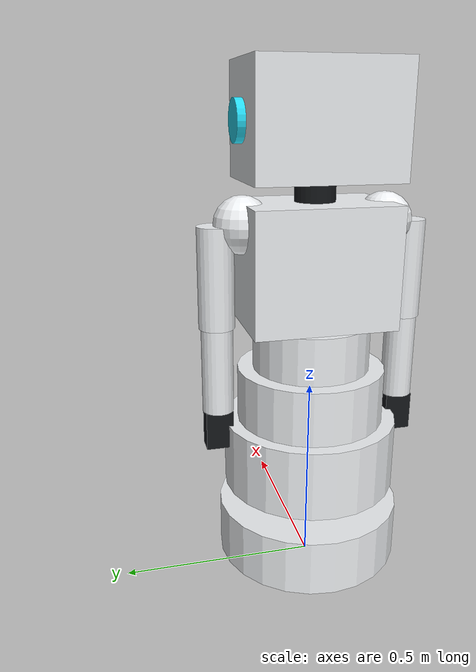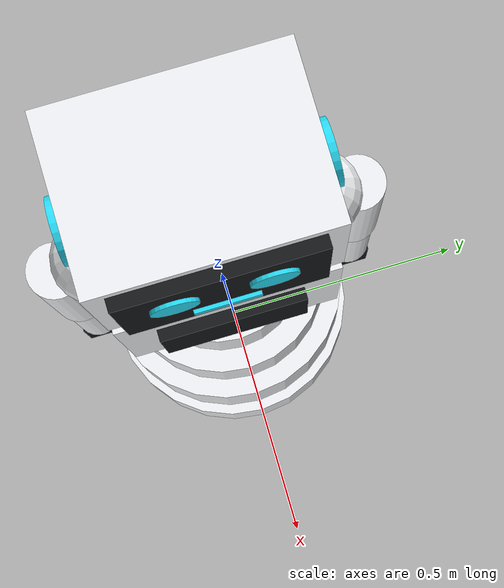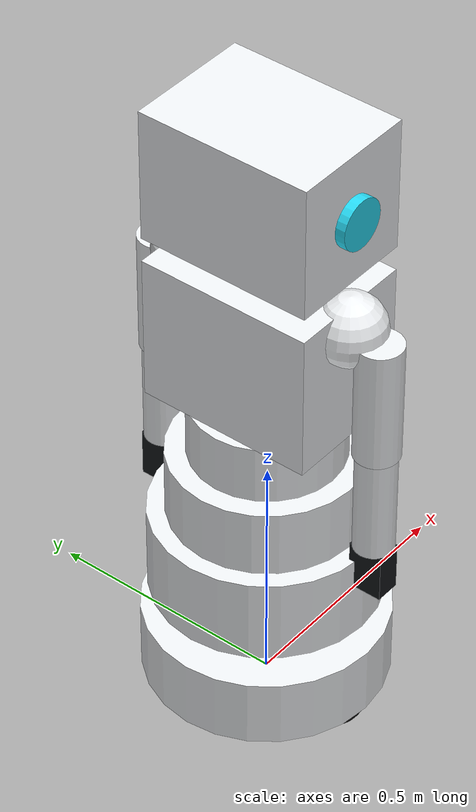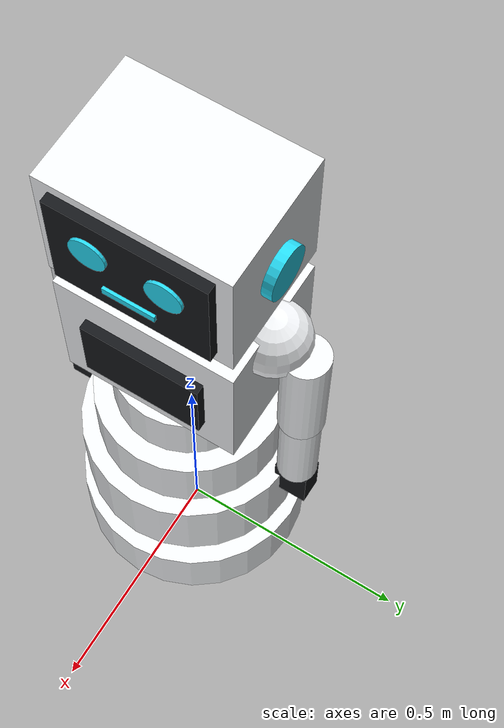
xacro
<?xml version="1.0"?>
<robot name="service_robot" xmlns:xacro="http://www.ros.org/wiki/xacro">

  <xacro:arg name="namespace" default=""/>
  <xacro:property name="ns" value="$(arg namespace)"/>

  <xacro:include filename="$(find robot_description)/urdf/inertial_macros.xacro"/>

  <!-- ===================== Shared dimensions ===================== -->
  <!-- Wheels / base -->
  <xacro:property name="wheel_radius" value="0.075"/>
  <xacro:property name="wheel_width" value="0.04"/>
  <xacro:property name="wheel_separation" value="0.40"/>
  <xacro:property name="wheel_mass" value="1.5"/>

  <xacro:property name="caster_radius" value="0.03"/>
  <xacro:property name="caster_x" value="0.17"/>
  <xacro:property name="caster_mass" value="0.3"/>

  <xacro:property name="base_ring_radius" value="0.24"/>
  <xacro:property name="base_ring_height" value="0.145"/>
  <xacro:property name="base_ring_mass" value="30.0"/>

  <xacro:property name="slot_radius" value="0.08"/>
  <xacro:property name="slot_height" value="0.06"/>

  <!-- Lower body (skirt) -->
  <xacro:property name="skirt_height" value="0.44"/>
  <xacro:property name="skirt_r_bottom" value="0.225"/>
  <xacro:property name="skirt_r_mid" value="0.19"/>
  <xacro:property name="skirt_r_top" value="0.15"/>
  <xacro:property name="skirt_mass" value="6.0"/>

  <!-- Torso -->
  <xacro:property name="torso_x" value="0.26"/>
  <xacro:property name="torso_y" value="0.36"/>
  <xacro:property name="torso_z" value="0.30"/>
  <xacro:property name="torso_mass" value="6.0"/>
  <xacro:property name="shoulder_radius" value="0.07"/>

  <!-- Neck / head -->
  <xacro:property name="neck_radius" value="0.05"/>
  <xacro:property name="neck_height" value="0.05"/>
  <xacro:property name="neck_mass" value="0.5"/>

  <xacro:property name="head_x" value="0.26"/>
  <xacro:property name="head_y" value="0.36"/>
  <xacro:property name="head_z" value="0.27"/>
  <xacro:property name="head_mass" value="3.5"/>

  <!-- Arms -->
  <xacro:property name="upper_arm_radius" value="0.045"/>
  <xacro:property name="upper_arm_length" value="0.25"/>
  <xacro:property name="upper_arm_mass" value="1.2"/>
  <xacro:property name="forearm_radius" value="0.04"/>
  <xacro:property name="forearm_length" value="0.22"/>
  <xacro:property name="forearm_mass" value="0.8"/>
  <xacro:property name="hand_x" value="0.05"/>
  <xacro:property name="hand_y" value="0.07"/>
  <xacro:property name="hand_z" value="0.10"/>
  <xacro:property name="hand_mass" value="0.4"/>
  <xacro:property name="shoulder_y" value="0.245"/>

  <!-- ===================== Materials ===================== -->
  <material name="body_white">
    <color rgba="0.93 0.94 0.95 1.0"/>
  </material>
  <material name="shell_dark">
    <color rgba="0.08 0.09 0.10 1.0"/>
  </material>
  <material name="accent_cyan">
    <color rgba="0.15 0.85 0.95 1.0"/>
  </material>
  <material name="wheel_black">
    <color rgba="0.05 0.05 0.05 1.0"/>
  </material>

  <xacro:include filename="$(find robot_description)/urdf/base.xacro"/>
  <xacro:include filename="$(find robot_description)/urdf/body.xacro"/>
  <xacro:include filename="$(find robot_description)/urdf/sensors.xacro"/>
  <xacro:include filename="$(find robot_description)/urdf/gazebo.xacro"/>

</robot>

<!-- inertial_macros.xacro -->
<robot xmlns:xacro="http://www.ros.org/wiki/xacro">

  <!-- Solid box inertia -->
  <xacro:macro name="inertial_box" params="mass x y z *origin">
    <inertial>
      <xacro:insert_block name="origin"/>
      <mass value="${mass}"/>
      <inertia
        ixx="${(1/12) * mass * (y*y + z*z)}" ixy="0.0" ixz="0.0"
        iyy="${(1/12) * mass * (x*x + z*z)}" iyz="0.0"
        izz="${(1/12) * mass * (x*x + y*y)}"/>
    </inertial>
  </xacro:macro>

  <!-- Solid cylinder inertia, axis along z of the given origin -->
  <xacro:macro name="inertial_cylinder" params="mass radius length *origin">
    <inertial>
      <xacro:insert_block name="origin"/>
      <mass value="${mass}"/>
      <inertia
        ixx="${(1/12) * mass * (3*radius*radius + length*length)}" ixy="0.0" ixz="0.0"
        iyy="${(1/12) * mass * (3*radius*radius + length*length)}" iyz="0.0"
        izz="${(1/2) * mass * radius*radius}"/>
    </inertial>
  </xacro:macro>

  <!-- Solid sphere inertia -->
  <xacro:macro name="inertial_sphere" params="mass radius *origin">
    <inertial>
      <xacro:insert_block name="origin"/>
      <mass value="${mass}"/>
      <inertia
        ixx="${(2/5) * mass * radius*radius}" ixy="0.0" ixz="0.0"
        iyy="${(2/5) * mass * radius*radius}" iyz="0.0"
        izz="${(2/5) * mass * radius*radius}"/>
    </inertial>
  </xacro:macro>

</robot>

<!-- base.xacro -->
<robot xmlns:xacro="http://www.ros.org/wiki/xacro">

  <!-- ============== base_footprint / base_link ============== -->
  <link name="base_footprint"/>

  <joint name="base_joint" type="fixed">
    <parent link="base_footprint"/>
    <child link="base_link"/>
    <origin xyz="0 0 ${wheel_radius}" rpy="0 0 0"/>
  </joint>

  <link name="base_link">
    <!-- battery / motor housing ring -->
    <visual>
      <origin xyz="0 0 ${(-0.04 + 0.105) / 2}" rpy="0 0 0"/>
      <geometry>
        <cylinder radius="${base_ring_radius}" length="${base_ring_height}"/>
      </geometry>
      <material name="body_white"/>
    </visual>
    <collision>
      <origin xyz="0 0 ${(-0.04 + 0.105) / 2}" rpy="0 0 0"/>
      <geometry>
        <cylinder radius="${base_ring_radius}" length="${base_ring_height}"/>
      </geometry>
    </collision>
    <xacro:inertial_cylinder mass="${base_ring_mass}" radius="${base_ring_radius}" length="${base_ring_height}">
      <origin xyz="0 0 ${(-0.04 + 0.105) / 2}" rpy="0 0 0"/>
    </xacro:inertial_cylinder>

    <!-- dark sensor slot that carries the lidar ring, between base and skirt -->
    <visual>
      <origin xyz="0 0 ${(0.105 + 0.165) / 2}" rpy="0 0 0"/>
      <geometry>
        <cylinder radius="${slot_radius}" length="${slot_height}"/>
      </geometry>
      <material name="shell_dark"/>
    </visual>
    <collision>
      <origin xyz="0 0 ${(0.105 + 0.165) / 2}" rpy="0 0 0"/>
      <geometry>
        <cylinder radius="${slot_radius}" length="${slot_height}"/>
      </geometry>
    </collision>
    <xacro:inertial_cylinder mass="0.3" radius="${slot_radius}" length="${slot_height}">
      <origin xyz="0 0 ${(0.105 + 0.165) / 2}" rpy="0 0 0"/>
    </xacro:inertial_cylinder>
  </link>

  <!-- ============== drive wheels ============== -->
  <xacro:macro name="drive_wheel" params="prefix reflect">
    <link name="${prefix}_wheel_link">
      <visual>
        <origin xyz="0 0 0" rpy="${pi/2} 0 0"/>
        <geometry>
          <cylinder radius="${wheel_radius}" length="${wheel_width}"/>
        </geometry>
        <material name="wheel_black"/>
      </visual>
      <collision>
        <origin xyz="0 0 0" rpy="${pi/2} 0 0"/>
        <geometry>
          <cylinder radius="${wheel_radius}" length="${wheel_width}"/>
        </geometry>
      </collision>
      <xacro:inertial_cylinder mass="${wheel_mass}" radius="${wheel_radius}" length="${wheel_width}">
        <origin xyz="0 0 0" rpy="${pi/2} 0 0"/>
      </xacro:inertial_cylinder>
    </link>

    <joint name="${prefix}_wheel_joint" type="continuous">
      <parent link="base_link"/>
      <child link="${prefix}_wheel_link"/>
      <origin xyz="0 ${reflect * wheel_separation / 2} 0" rpy="0 0 0"/>
      <axis xyz="0 1 0"/>
      <dynamics damping="0.1" friction="0.05"/>
    </joint>

    <gazebo reference="${prefix}_wheel_link">
      <collision>
        <surface>
          <friction>
            <ode><mu>1.0</mu><mu2>1.0</mu2></ode>
          </friction>
        </surface>
      </collision>
    </gazebo>
  </xacro:macro>

  <xacro:drive_wheel prefix="left" reflect="1"/>
  <xacro:drive_wheel prefix="right" reflect="-1"/>

  <!-- ============== support casters (fixed, frictionless) ============== -->
  <xacro:macro name="support_caster" params="prefix x_pos">
    <link name="${prefix}_caster_link">
      <visual>
        <geometry>
          <sphere radius="${caster_radius}"/>
        </geometry>
        <material name="wheel_black"/>
      </visual>
      <collision>
        <geometry>
          <sphere radius="${caster_radius}"/>
        </geometry>
      </collision>
      <xacro:inertial_sphere mass="${caster_mass}" radius="${caster_radius}">
        <origin xyz="0 0 0" rpy="0 0 0"/>
      </xacro:inertial_sphere>
    </link>

    <joint name="${prefix}_caster_joint" type="fixed">
      <parent link="base_link"/>
      <child link="${prefix}_caster_link"/>
      <origin xyz="${x_pos} 0 ${caster_radius - wheel_radius}" rpy="0 0 0"/>
    </joint>

    <gazebo reference="${prefix}_caster_link">
      <collision>
        <surface>
          <friction>
            <ode><mu>0.0</mu><mu2>0.0</mu2></ode>
          </friction>
        </surface>
      </collision>
    </gazebo>
  </xacro:macro>

  <xacro:support_caster prefix="front" x_pos="${caster_x}"/>
  <xacro:support_caster prefix="rear" x_pos="${-caster_x}"/>

</robot>

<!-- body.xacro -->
<robot xmlns:xacro="http://www.ros.org/wiki/xacro">

  <!-- ============== lower body / skirt ============== -->
  <link name="skirt_link">
    <visual>
      <origin xyz="0 0 0.09" rpy="0 0 0"/>
      <geometry><cylinder radius="${skirt_r_bottom}" length="0.18"/></geometry>
      <material name="body_white"/>
    </visual>
    <visual>
      <origin xyz="0 0 0.25" rpy="0 0 0"/>
      <geometry><cylinder radius="${skirt_r_mid}" length="0.14"/></geometry>
      <material name="body_white"/>
    </visual>
    <visual>
      <origin xyz="0 0 0.38" rpy="0 0 0"/>
      <geometry><cylinder radius="${skirt_r_top}" length="0.12"/></geometry>
      <material name="body_white"/>
    </visual>
    <collision>
      <origin xyz="0 0 0.22" rpy="0 0 0"/>
      <geometry><cylinder radius="${skirt_r_bottom}" length="${skirt_height}"/></geometry>
    </collision>
    <xacro:inertial_cylinder mass="${skirt_mass}" radius="${skirt_r_bottom}" length="${skirt_height}">
      <origin xyz="0 0 0.22" rpy="0 0 0"/>
    </xacro:inertial_cylinder>
  </link>

  <joint name="skirt_joint" type="fixed">
    <parent link="base_link"/>
    <child link="skirt_link"/>
    <origin xyz="0 0 0.165" rpy="0 0 0"/>
  </joint>

  <!-- ============== torso ============== -->
  <link name="torso_link">
    <visual>
      <origin xyz="0 0 ${torso_z / 2}" rpy="0 0 0"/>
      <geometry><box size="${torso_x} ${torso_y} ${torso_z}"/></geometry>
      <material name="body_white"/>
    </visual>
    <visual>
      <origin xyz="0 ${torso_y / 2} 0.25" rpy="0 0 0"/>
      <geometry><sphere radius="${shoulder_radius}"/></geometry>
      <material name="body_white"/>
    </visual>
    <visual>
      <origin xyz="0 ${-torso_y / 2} 0.25" rpy="0 0 0"/>
      <geometry><sphere radius="${shoulder_radius}"/></geometry>
      <material name="body_white"/>
    </visual>
    <!-- chest display -->
    <visual>
      <origin xyz="${torso_x / 2 + 0.01} 0 0.15" rpy="0 0 0"/>
      <geometry><box size="0.02 0.24 0.15"/></geometry>
      <material name="shell_dark"/>
    </visual>
    <collision>
      <origin xyz="0 0 ${torso_z / 2}" rpy="0 0 0"/>
      <geometry><box size="${torso_x} ${torso_y} ${torso_z}"/></geometry>
    </collision>
    <xacro:inertial_box mass="${torso_mass}" x="${torso_x}" y="${torso_y}" z="${torso_z}">
      <origin xyz="0 0 ${torso_z / 2}" rpy="0 0 0"/>
    </xacro:inertial_box>
  </link>

  <joint name="torso_joint" type="fixed">
    <parent link="skirt_link"/>
    <child link="torso_link"/>
    <origin xyz="0 0 ${skirt_height}" rpy="0 0 0"/>
  </joint>

  <!-- ============== neck ============== -->
  <link name="neck_link">
    <visual>
      <origin xyz="0 0 ${neck_height / 2}" rpy="0 0 0"/>
      <geometry><cylinder radius="${neck_radius}" length="${neck_height}"/></geometry>
      <material name="shell_dark"/>
    </visual>
    <collision>
      <origin xyz="0 0 ${neck_height / 2}" rpy="0 0 0"/>
      <geometry><cylinder radius="${neck_radius}" length="${neck_height}"/></geometry>
    </collision>
    <xacro:inertial_cylinder mass="${neck_mass}" radius="${neck_radius}" length="${neck_height}">
      <origin xyz="0 0 ${neck_height / 2}" rpy="0 0 0"/>
    </xacro:inertial_cylinder>
  </link>

  <joint name="neck_joint" type="fixed">
    <parent link="torso_link"/>
    <child link="neck_link"/>
    <origin xyz="0 0 ${torso_z}" rpy="0 0 0"/>
  </joint>

  <!-- ============== head ============== -->
  <link name="head_link">
    <visual>
      <origin xyz="0 0 ${head_z / 2}" rpy="0 0 0"/>
      <geometry><box size="${head_x} ${head_y} ${head_z}"/></geometry>
      <material name="body_white"/>
    </visual>
    <!-- ears -->
    <visual>
      <origin xyz="0 ${head_y / 2} 0.135" rpy="${pi/2} 0 0"/>
      <geometry><cylinder radius="0.05" length="0.04"/></geometry>
      <material name="accent_cyan"/>
    </visual>
    <visual>
      <origin xyz="0 ${-head_y / 2} 0.135" rpy="${pi/2} 0 0"/>
      <geometry><cylinder radius="0.05" length="0.04"/></geometry>
      <material name="accent_cyan"/>
    </visual>
    <!-- face screen panel -->
    <visual>
      <origin xyz="${head_x / 2 + 0.01} 0 0.14" rpy="0 0 0"/>
      <geometry><box size="0.02 0.30 0.22"/></geometry>
      <material name="shell_dark"/>
    </visual>
    <!-- eyes -->
    <visual>
      <origin xyz="0.151 0.07 0.17" rpy="0 ${pi/2} 0"/>
      <geometry><cylinder radius="0.035" length="0.01"/></geometry>
      <material name="accent_cyan"/>
    </visual>
    <visual>
      <origin xyz="0.151 -0.07 0.17" rpy="0 ${pi/2} 0"/>
      <geometry><cylinder radius="0.035" length="0.01"/></geometry>
      <material name="accent_cyan"/>
    </visual>
    <!-- mouth -->
    <visual>
      <origin xyz="0.151 0 0.08" rpy="0 0 0"/>
      <geometry><box size="0.01 0.10 0.015"/></geometry>
      <material name="accent_cyan"/>
    </visual>
    <!-- top camera lens caps (decorative; real camera sensor is a separate link) -->
    <visual>
      <origin xyz="0.09 0.03 ${head_z - 0.015}" rpy="0 0 0"/>
      <geometry><cylinder radius="0.012" length="0.01"/></geometry>
      <material name="shell_dark"/>
    </visual>
    <visual>
      <origin xyz="0.09 -0.03 ${head_z - 0.015}" rpy="0 0 0"/>
      <geometry><cylinder radius="0.012" length="0.01"/></geometry>
      <material name="shell_dark"/>
    </visual>
    <collision>
      <origin xyz="0 0 ${head_z / 2}" rpy="0 0 0"/>
      <geometry><box size="${head_x} ${head_y} ${head_z}"/></geometry>
    </collision>
    <xacro:inertial_box mass="${head_mass}" x="${head_x}" y="${head_y}" z="${head_z}">
      <origin xyz="0 0 ${head_z / 2}" rpy="0 0 0"/>
    </xacro:inertial_box>
  </link>

  <joint name="head_joint" type="fixed">
    <parent link="neck_link"/>
    <child link="head_link"/>
    <origin xyz="0 0 ${neck_height}" rpy="0 0 0"/>
  </joint>

  <!-- ============== arms ============== -->
  <xacro:macro name="arm" params="prefix reflect">
    <link name="${prefix}_upper_arm_link">
      <visual>
        <origin xyz="0 0 ${-upper_arm_length / 2}" rpy="0 0 0"/>
        <geometry><cylinder radius="${upper_arm_radius}" length="${upper_arm_length}"/></geometry>
        <material name="body_white"/>
      </visual>
      <collision>
        <origin xyz="0 0 ${-upper_arm_length / 2}" rpy="0 0 0"/>
        <geometry><cylinder radius="${upper_arm_radius}" length="${upper_arm_length}"/></geometry>
      </collision>
      <xacro:inertial_cylinder mass="${upper_arm_mass}" radius="${upper_arm_radius}" length="${upper_arm_length}">
        <origin xyz="0 0 ${-upper_arm_length / 2}" rpy="0 0 0"/>
      </xacro:inertial_cylinder>
    </link>

    <joint name="${prefix}_shoulder_joint" type="fixed">
      <parent link="torso_link"/>
      <child link="${prefix}_upper_arm_link"/>
      <origin xyz="0 ${reflect * shoulder_y} 0.25" rpy="0 0 0"/>
    </joint>

    <link name="${prefix}_forearm_link">
      <visual>
        <origin xyz="0 0 ${-forearm_length / 2}" rpy="0 0 0"/>
        <geometry><cylinder radius="${forearm_radius}" length="${forearm_length}"/></geometry>
        <material name="body_white"/>
      </visual>
      <collision>
        <origin xyz="0 0 ${-forearm_length / 2}" rpy="0 0 0"/>
        <geometry><cylinder radius="${forearm_radius}" length="${forearm_length}"/></geometry>
      </collision>
      <xacro:inertial_cylinder mass="${forearm_mass}" radius="${forearm_radius}" length="${forearm_length}">
        <origin xyz="0 0 ${-forearm_length / 2}" rpy="0 0 0"/>
      </xacro:inertial_cylinder>
    </link>

    <joint name="${prefix}_elbow_joint" type="fixed">
      <parent link="${prefix}_upper_arm_link"/>
      <child link="${prefix}_forearm_link"/>
      <origin xyz="0 0 ${-upper_arm_length}" rpy="0 0 0"/>
    </joint>

    <link name="${prefix}_hand_link">
      <visual>
        <origin xyz="0 0 ${-hand_z / 2}" rpy="0 0 0"/>
        <geometry><box size="${hand_x} ${hand_y} ${hand_z}"/></geometry>
        <material name="shell_dark"/>
      </visual>
      <collision>
        <origin xyz="0 0 ${-hand_z / 2}" rpy="0 0 0"/>
        <geometry><box size="${hand_x} ${hand_y} ${hand_z}"/></geometry>
      </collision>
      <xacro:inertial_box mass="${hand_mass}" x="${hand_x}" y="${hand_y}" z="${hand_z}">
        <origin xyz="0 0 ${-hand_z / 2}" rpy="0 0 0"/>
      </xacro:inertial_box>
    </link>

    <joint name="${prefix}_wrist_joint" type="fixed">
      <parent link="${prefix}_forearm_link"/>
      <child link="${prefix}_hand_link"/>
      <origin xyz="0 0 ${-forearm_length}" rpy="0 0 0"/>
    </joint>
  </xacro:macro>

  <xacro:arm prefix="left" reflect="1"/>
  <xacro:arm prefix="right" reflect="-1"/>

</robot>

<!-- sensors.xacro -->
<robot xmlns:xacro="http://www.ros.org/wiki/xacro">

  <!-- ============== 2D LiDAR ============== -->
  <link name="lidar_link">
    <visual>
      <geometry><cylinder radius="0.025" length="0.03"/></geometry>
      <material name="shell_dark"/>
    </visual>
    <xacro:inertial_cylinder mass="0.1" radius="0.025" length="0.03">
      <origin xyz="0 0 0" rpy="0 0 0"/>
    </xacro:inertial_cylinder>
  </link>

  <joint name="lidar_joint" type="fixed">
    <parent link="base_link"/>
    <child link="lidar_link"/>
    <origin xyz="0.15 0 0.135" rpy="0 0 0"/>
  </joint>

  <gazebo reference="lidar_link">
    <sensor name="front_lidar" type="gpu_lidar">
      <always_on>true</always_on>
      <visualize>false</visualize>
      <update_rate>10</update_rate>
      <topic>scan</topic>
      <gz_frame_id>lidar_link</gz_frame_id>
      <ray>
        <scan>
          <horizontal>
            <samples>720</samples>
            <resolution>1.0</resolution>
            <min_angle>-2.3561944</min_angle>
            <max_angle>2.3561944</max_angle>
          </horizontal>
        </scan>
        <range>
          <min>0.12</min>
          <max>12.0</max>
          <resolution>0.01</resolution>
        </range>
        <noise>
          <type>gaussian</type>
          <mean>0.0</mean>
          <stddev>0.01</stddev>
        </noise>
      </ray>
    </sensor>
  </gazebo>

  <!-- ============== IMU ============== -->
  <link name="imu_link">
    <xacro:inertial_box mass="0.05" x="0.02" y="0.02" z="0.01">
      <origin xyz="0 0 0" rpy="0 0 0"/>
    </xacro:inertial_box>
  </link>

  <joint name="imu_joint" type="fixed">
    <parent link="base_link"/>
    <child link="imu_link"/>
    <origin xyz="0 0 0" rpy="0 0 0"/>
  </joint>

  <gazebo reference="imu_link">
    <sensor name="base_imu" type="imu">
      <always_on>true</always_on>
      <update_rate>100</update_rate>
      <topic>imu</topic>
      <gz_frame_id>imu_link</gz_frame_id>
      <imu>
        <angular_velocity>
          <x><noise type="gaussian"><mean>0.0</mean><stddev>2e-4</stddev></noise></x>
          <y><noise type="gaussian"><mean>0.0</mean><stddev>2e-4</stddev></noise></y>
          <z><noise type="gaussian"><mean>0.0</mean><stddev>2e-4</stddev></noise></z>
        </angular_velocity>
        <linear_acceleration>
          <x><noise type="gaussian"><mean>0.0</mean><stddev>1.7e-2</stddev></noise></x>
          <y><noise type="gaussian"><mean>0.0</mean><stddev>1.7e-2</stddev></noise></y>
          <z><noise type="gaussian"><mean>0.0</mean><stddev>1.7e-2</stddev></noise></z>
        </linear_acceleration>
      </imu>
    </sensor>
  </gazebo>

  <!-- ============== front camera (placeholder) ============== -->
  <link name="camera_link">
    <visual>
      <geometry><box size="0.02 0.03 0.02"/></geometry>
      <material name="shell_dark"/>
    </visual>
    <xacro:inertial_box mass="0.05" x="0.02" y="0.03" z="0.02">
      <origin xyz="0 0 0" rpy="0 0 0"/>
    </xacro:inertial_box>
  </link>

  <joint name="camera_joint" type="fixed">
    <parent link="head_link"/>
    <child link="camera_link"/>
    <origin xyz="0.10 0 0.255" rpy="0 0 0"/>
  </joint>

  <link name="camera_optical_link"/>

  <joint name="camera_optical_joint" type="fixed">
    <parent link="camera_link"/>
    <child link="camera_optical_link"/>
    <origin xyz="0 0 0" rpy="${-pi/2} 0 ${-pi/2}"/>
  </joint>

  <gazebo reference="camera_optical_link">
    <sensor name="front_camera" type="camera">
      <always_on>true</always_on>
      <visualize>false</visualize>
      <update_rate>15</update_rate>
      <topic>camera/image_raw</topic>
      <gz_frame_id>camera_optical_link</gz_frame_id>
      <camera name="front_camera">
        <horizontal_fov>1.2</horizontal_fov>
        <image>
          <width>640</width>
          <height>480</height>
          <format>R8G8B8</format>
        </image>
        <clip>
          <near>0.05</near>
          <far>50.0</far>
        </clip>
      </camera>
    </sensor>
  </gazebo>

</robot>
